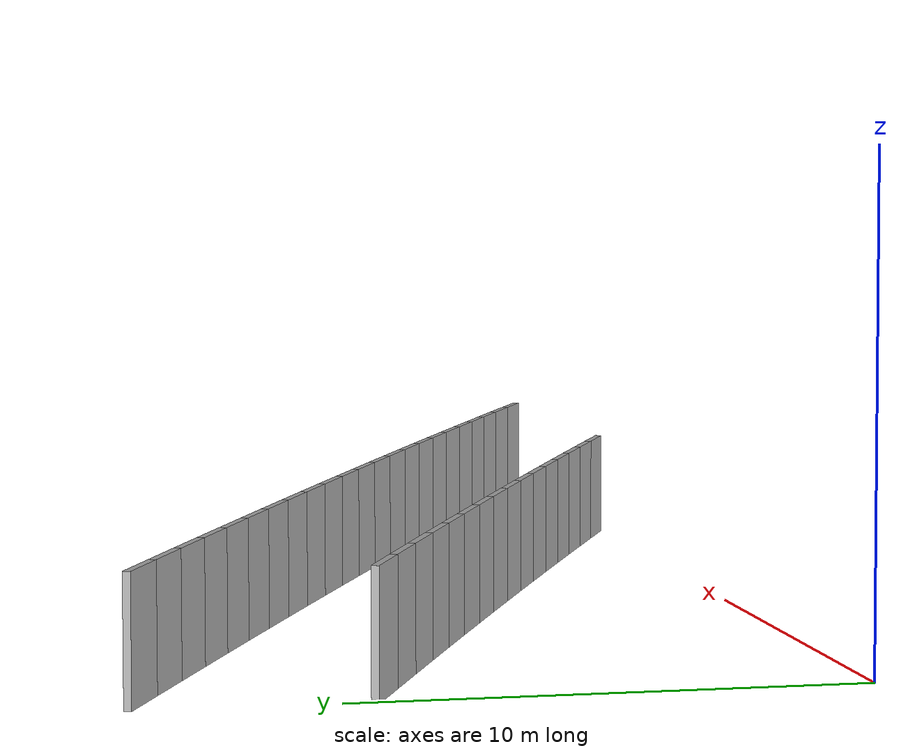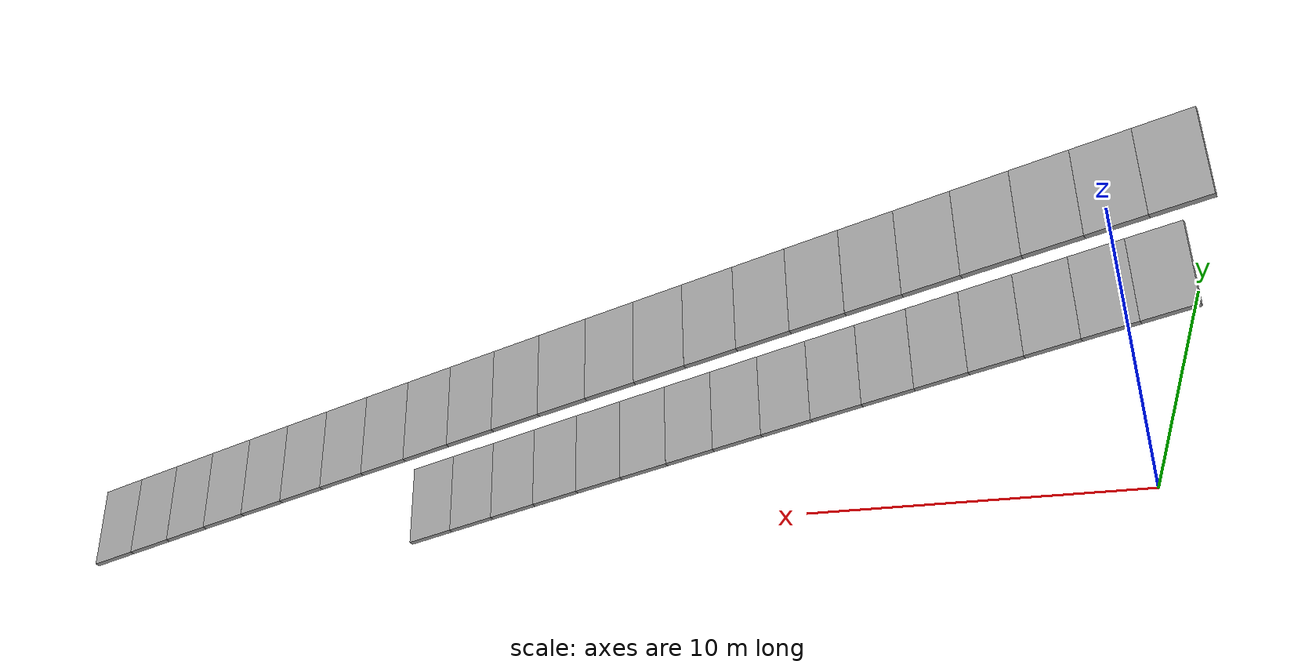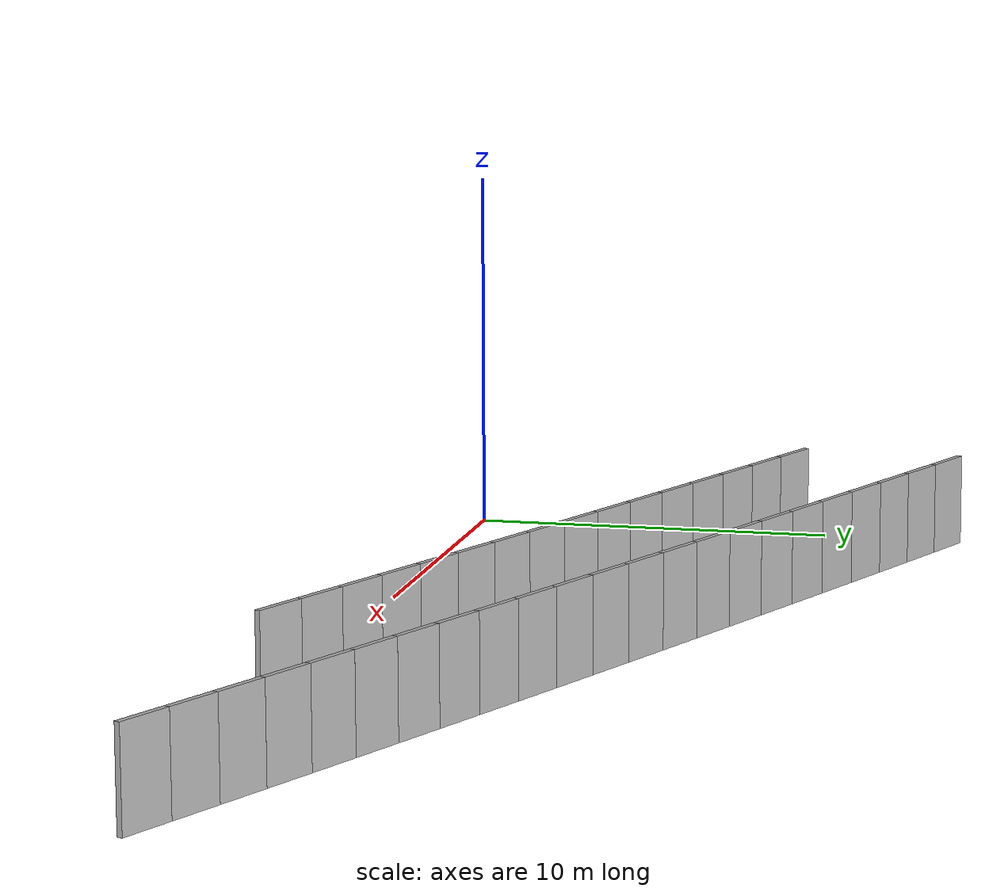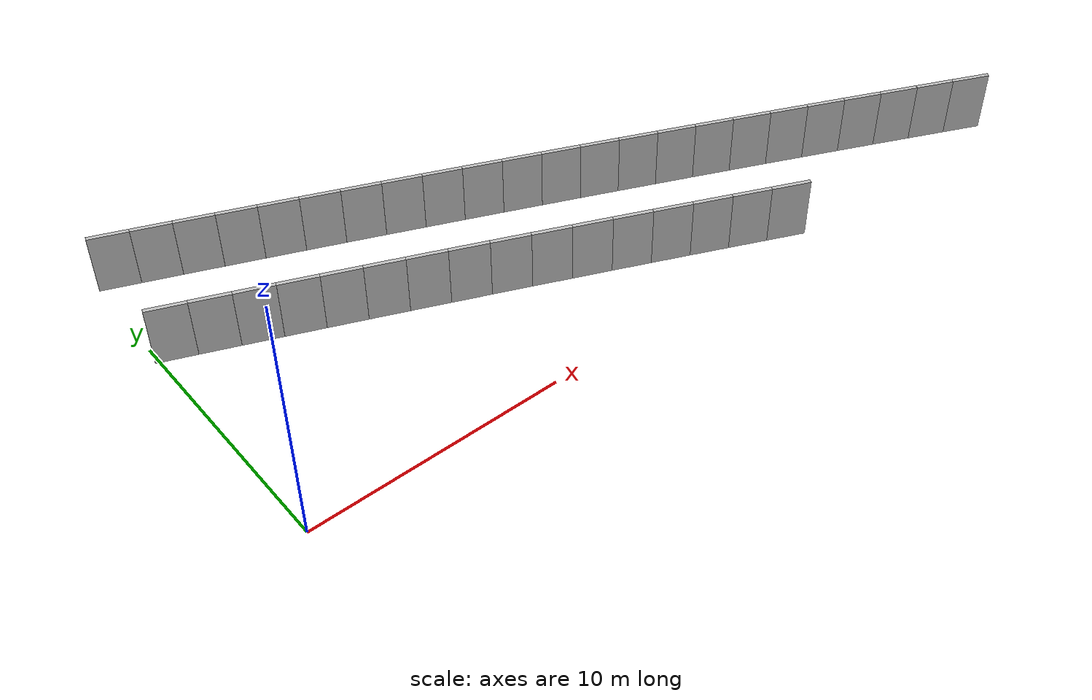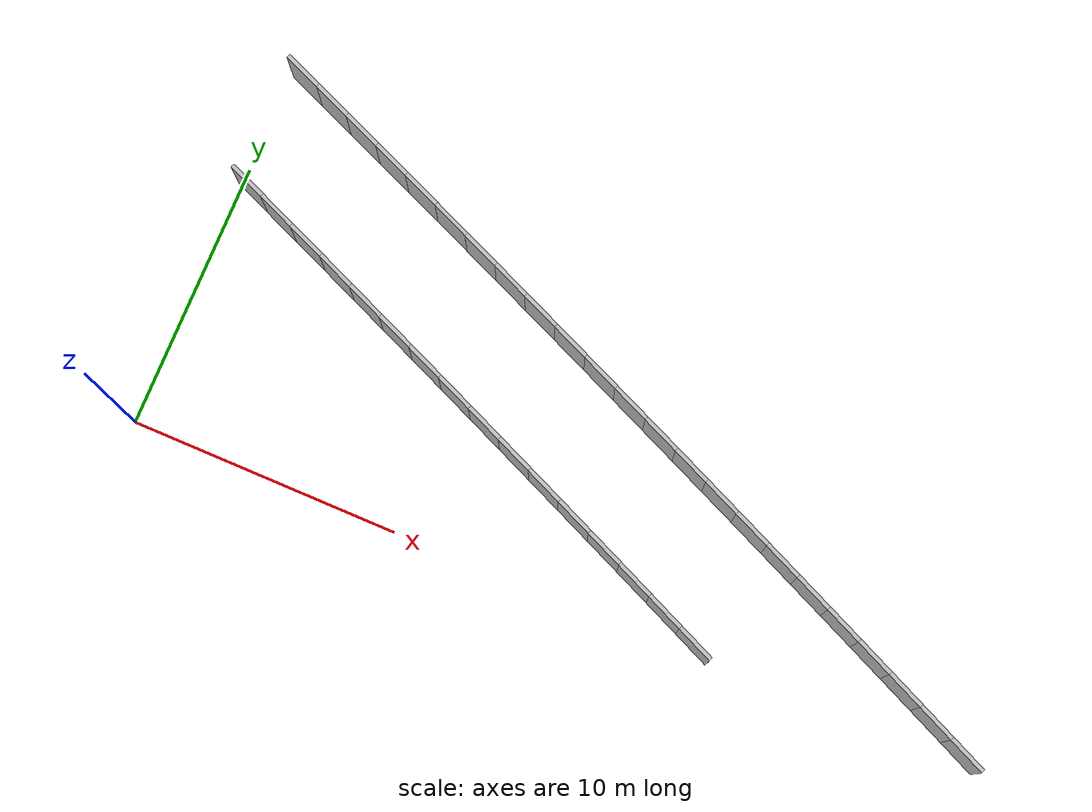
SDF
<?xml version="1.0" ?>
<sdf version="1.6">
  <model name="sps_3445">
    <pose frame="">0 0 0 0 -0 0</pose>
    <static>1</static>
    <self_collide>0</self_collide>
    <allow_auto_disable>0</allow_auto_disable>
    <link name="Wall10651">
      <kinematic>0</kinematic>
      <gravity>1</gravity>
      <self_collide>0</self_collide>
      <collision name="collision">
        <geometry>
          <box>
            <size>1.49641 0.15 2.5</size>
          </box>
        </geometry>
        <pose frame="">0 0 0 0 -0 0</pose>
      </collision>
      <visual name="visual">
        <geometry>
          <box>
            <size>1.49641 0.15 2.5</size>
          </box>
        </geometry>
        <pose frame="">0 0 0 0 -0 0</pose>
        <cast_shadows>1</cast_shadows>
        <transparency>0.0</transparency>
      </visual>
      <pose frame="">21.2089 0.320174 1.25 0 -0 2.72597</pose>
    </link>
    <link name="Wall10652">
      <kinematic>0</kinematic>
      <gravity>1</gravity>
      <self_collide>0</self_collide>
      <collision name="collision">
        <geometry>
          <box>
            <size>1.49652 0.15 2.5</size>
          </box>
        </geometry>
        <pose frame="">0 0 0 0 -0 0</pose>
      </collision>
      <visual name="visual">
        <geometry>
          <box>
            <size>1.49652 0.15 2.5</size>
          </box>
        </geometry>
        <pose frame="">0 0 0 0 -0 0</pose>
        <cast_shadows>1</cast_shadows>
        <transparency>0.0</transparency>
      </visual>
      <pose frame="">19.8394 0.923385 1.25 0 -0 2.72743</pose>
    </link>
    <link name="Wall10653">
      <kinematic>0</kinematic>
      <gravity>1</gravity>
      <self_collide>0</self_collide>
      <collision name="collision">
        <geometry>
          <box>
            <size>1.49673 0.15 2.5</size>
          </box>
        </geometry>
        <pose frame="">0 0 0 0 -0 0</pose>
      </collision>
      <visual name="visual">
        <geometry>
          <box>
            <size>1.49673 0.15 2.5</size>
          </box>
        </geometry>
        <pose frame="">0 0 0 0 -0 0</pose>
        <cast_shadows>1</cast_shadows>
        <transparency>0.0</transparency>
      </visual>
      <pose frame="">18.4688 1.52449 1.25 0 -0 2.72914</pose>
    </link>
    <link name="Wall10654">
      <kinematic>0</kinematic>
      <gravity>1</gravity>
      <self_collide>0</self_collide>
      <collision name="collision">
        <geometry>
          <box>
            <size>1.49645 0.15 2.5</size>
          </box>
        </geometry>
        <pose frame="">0 0 0 0 -0 0</pose>
      </collision>
      <visual name="visual">
        <geometry>
          <box>
            <size>1.49645 0.15 2.5</size>
          </box>
        </geometry>
        <pose frame="">0 0 0 0 -0 0</pose>
        <cast_shadows>1</cast_shadows>
        <transparency>0.0</transparency>
      </visual>
      <pose frame="">17.0973 2.12349 1.25 0 -0 2.73048</pose>
    </link>
    <link name="Wall10655">
      <kinematic>0</kinematic>
      <gravity>1</gravity>
      <self_collide>0</self_collide>
      <collision name="collision">
        <geometry>
          <box>
            <size>1.4966 0.15 2.5</size>
          </box>
        </geometry>
        <pose frame="">0 0 0 0 -0 0</pose>
      </collision>
      <visual name="visual">
        <geometry>
          <box>
            <size>1.4966 0.15 2.5</size>
          </box>
        </geometry>
        <pose frame="">0 0 0 0 -0 0</pose>
        <cast_shadows>1</cast_shadows>
        <transparency>0.0</transparency>
      </visual>
      <pose frame="">15.725 2.72029 1.25 0 -0 2.7323</pose>
    </link>
    <link name="Wall10656">
      <kinematic>0</kinematic>
      <gravity>1</gravity>
      <self_collide>0</self_collide>
      <collision name="collision">
        <geometry>
          <box>
            <size>1.49651 0.15 2.5</size>
          </box>
        </geometry>
        <pose frame="">0 0 0 0 -0 0</pose>
      </collision>
      <visual name="visual">
        <geometry>
          <box>
            <size>1.49651 0.15 2.5</size>
          </box>
        </geometry>
        <pose frame="">0 0 0 0 -0 0</pose>
        <cast_shadows>1</cast_shadows>
        <transparency>0.0</transparency>
      </visual>
      <pose frame="">14.3516 3.31477 1.25 0 -0 2.73388</pose>
    </link>
    <link name="Wall10657">
      <kinematic>0</kinematic>
      <gravity>1</gravity>
      <self_collide>0</self_collide>
      <collision name="collision">
        <geometry>
          <box>
            <size>1.49641 0.15 2.5</size>
          </box>
        </geometry>
        <pose frame="">0 0 0 0 -0 0</pose>
      </collision>
      <visual name="visual">
        <geometry>
          <box>
            <size>1.49641 0.15 2.5</size>
          </box>
        </geometry>
        <pose frame="">0 0 0 0 -0 0</pose>
        <cast_shadows>1</cast_shadows>
        <transparency>0.0</transparency>
      </visual>
      <pose frame="">12.9773 3.90718 1.25 0 -0 2.73527</pose>
    </link>
    <link name="Wall10658">
      <kinematic>0</kinematic>
      <gravity>1</gravity>
      <self_collide>0</self_collide>
      <collision name="collision">
        <geometry>
          <box>
            <size>1.4964 0.15 2.5</size>
          </box>
        </geometry>
        <pose frame="">0 0 0 0 -0 0</pose>
      </collision>
      <visual name="visual">
        <geometry>
          <box>
            <size>1.4964 0.15 2.5</size>
          </box>
        </geometry>
        <pose frame="">0 0 0 0 -0 0</pose>
        <cast_shadows>1</cast_shadows>
        <transparency>0.0</transparency>
      </visual>
      <pose frame="">11.6023 4.49739 1.25 0 -0 2.73704</pose>
    </link>
    <link name="Wall10659">
      <kinematic>0</kinematic>
      <gravity>1</gravity>
      <self_collide>0</self_collide>
      <collision name="collision">
        <geometry>
          <box>
            <size>1.49653 0.15 2.5</size>
          </box>
        </geometry>
        <pose frame="">0 0 0 0 -0 0</pose>
      </collision>
      <visual name="visual">
        <geometry>
          <box>
            <size>1.49653 0.15 2.5</size>
          </box>
        </geometry>
        <pose frame="">0 0 0 0 -0 0</pose>
        <cast_shadows>1</cast_shadows>
        <transparency>0.0</transparency>
      </visual>
      <pose frame="">10.2262 5.0854 1.25 0 -0 2.7385</pose>
    </link>
    <link name="Wall10660">
      <kinematic>0</kinematic>
      <gravity>1</gravity>
      <self_collide>0</self_collide>
      <collision name="collision">
        <geometry>
          <box>
            <size>1.49653 0.15 2.5</size>
          </box>
        </geometry>
        <pose frame="">0 0 0 0 -0 0</pose>
      </collision>
      <visual name="visual">
        <geometry>
          <box>
            <size>1.49653 0.15 2.5</size>
          </box>
        </geometry>
        <pose frame="">0 0 0 0 -0 0</pose>
        <cast_shadows>1</cast_shadows>
        <transparency>0.0</transparency>
      </visual>
      <pose frame="">8.84905 5.67122 1.25 0 -0 2.74027</pose>
    </link>
    <link name="Wall10661">
      <kinematic>0</kinematic>
      <gravity>1</gravity>
      <self_collide>0</self_collide>
      <collision name="collision">
        <geometry>
          <box>
            <size>1.49642 0.15 2.5</size>
          </box>
        </geometry>
        <pose frame="">0 0 0 0 -0 0</pose>
      </collision>
      <visual name="visual">
        <geometry>
          <box>
            <size>1.49642 0.15 2.5</size>
          </box>
        </geometry>
        <pose frame="">0 0 0 0 -0 0</pose>
        <cast_shadows>1</cast_shadows>
        <transparency>0.0</transparency>
      </visual>
      <pose frame="">7.47106 6.25481 1.25 0 -0 2.7417</pose>
    </link>
    <link name="Wall10662">
      <kinematic>0</kinematic>
      <gravity>1</gravity>
      <self_collide>0</self_collide>
      <collision name="collision">
        <geometry>
          <box>
            <size>1.49658 0.15 2.5</size>
          </box>
        </geometry>
        <pose frame="">0 0 0 0 -0 0</pose>
      </collision>
      <visual name="visual">
        <geometry>
          <box>
            <size>1.49658 0.15 2.5</size>
          </box>
        </geometry>
        <pose frame="">0 0 0 0 -0 0</pose>
        <cast_shadows>1</cast_shadows>
        <transparency>0.0</transparency>
      </visual>
      <pose frame="">6.09215 6.83629 1.25 0 -0 2.74334</pose>
    </link>
    <link name="Wall10663">
      <kinematic>0</kinematic>
      <gravity>1</gravity>
      <self_collide>0</self_collide>
      <collision name="collision">
        <geometry>
          <box>
            <size>1.49666 0.15 2.5</size>
          </box>
        </geometry>
        <pose frame="">0 0 0 0 -0 0</pose>
      </collision>
      <visual name="visual">
        <geometry>
          <box>
            <size>1.49666 0.15 2.5</size>
          </box>
        </geometry>
        <pose frame="">0 0 0 0 -0 0</pose>
        <cast_shadows>1</cast_shadows>
        <transparency>0.0</transparency>
      </visual>
      <pose frame="">4.71224 7.41569 1.25 0 -0 2.74478</pose>
    </link>
    <link name="Wall10664">
      <kinematic>0</kinematic>
      <gravity>1</gravity>
      <self_collide>0</self_collide>
      <collision name="collision">
        <geometry>
          <box>
            <size>1.49651 0.15 2.5</size>
          </box>
        </geometry>
        <pose frame="">0 0 0 0 -0 0</pose>
      </collision>
      <visual name="visual">
        <geometry>
          <box>
            <size>1.49651 0.15 2.5</size>
          </box>
        </geometry>
        <pose frame="">0 0 0 0 -0 0</pose>
        <cast_shadows>1</cast_shadows>
        <transparency>0.0</transparency>
      </visual>
      <pose frame="">3.33144 7.9929 1.25 0 -0 2.74651</pose>
    </link>
    <link name="Wall10665">
      <kinematic>0</kinematic>
      <gravity>1</gravity>
      <self_collide>0</self_collide>
      <collision name="collision">
        <geometry>
          <box>
            <size>1.49657 0.15 2.5</size>
          </box>
        </geometry>
        <pose frame="">0 0 0 0 -0 0</pose>
      </collision>
      <visual name="visual">
        <geometry>
          <box>
            <size>1.49657 0.15 2.5</size>
          </box>
        </geometry>
        <pose frame="">0 0 0 0 -0 0</pose>
        <cast_shadows>1</cast_shadows>
        <transparency>0.0</transparency>
      </visual>
      <pose frame="">1.94973 8.56779 1.25 0 -0 2.74811</pose>
    </link>
    <link name="Wall10666">
      <kinematic>0</kinematic>
      <gravity>1</gravity>
      <self_collide>0</self_collide>
      <collision name="collision">
        <geometry>
          <box>
            <size>1.49646 0.15 2.5</size>
          </box>
        </geometry>
        <pose frame="">0 0 0 0 -0 0</pose>
      </collision>
      <visual name="visual">
        <geometry>
          <box>
            <size>1.49646 0.15 2.5</size>
          </box>
        </geometry>
        <pose frame="">0 0 0 0 -0 0</pose>
        <cast_shadows>1</cast_shadows>
        <transparency>0.0</transparency>
      </visual>
      <pose frame="">0.56713 9.14049 1.25 0 -0 2.74967</pose>
    </link>
    <link name="Wall11242">
      <kinematic>0</kinematic>
      <gravity>1</gravity>
      <self_collide>0</self_collide>
      <collision name="collision">
        <geometry>
          <box>
            <size>1.50303 0.15 2.5</size>
          </box>
        </geometry>
        <pose frame="">0 0 0 0 -0 0</pose>
      </collision>
      <visual name="visual">
        <geometry>
          <box>
            <size>1.50303 0.15 2.5</size>
          </box>
        </geometry>
        <pose frame="">0 0 0 0 -0 0</pose>
        <cast_shadows>1</cast_shadows>
        <transparency>0.0</transparency>
      </visual>
      <pose frame="">31.1133 0.426894 1.25 0 -0 2.7164</pose>
    </link>
    <link name="Wall11243">
      <kinematic>0</kinematic>
      <gravity>1</gravity>
      <self_collide>0</self_collide>
      <collision name="collision">
        <geometry>
          <box>
            <size>1.50315 0.15 2.5</size>
          </box>
        </geometry>
        <pose frame="">0 0 0 0 -0 0</pose>
      </collision>
      <visual name="visual">
        <geometry>
          <box>
            <size>1.50315 0.15 2.5</size>
          </box>
        </geometry>
        <pose frame="">0 0 0 0 -0 0</pose>
        <cast_shadows>1</cast_shadows>
        <transparency>0.0</transparency>
      </visual>
      <pose frame="">29.7436 1.04588 1.25 0 -0 2.71791</pose>
    </link>
    <link name="Wall11244">
      <kinematic>0</kinematic>
      <gravity>1</gravity>
      <self_collide>0</self_collide>
      <collision name="collision">
        <geometry>
          <box>
            <size>1.50301 0.15 2.5</size>
          </box>
        </geometry>
        <pose frame="">0 0 0 0 -0 0</pose>
      </collision>
      <visual name="visual">
        <geometry>
          <box>
            <size>1.50301 0.15 2.5</size>
          </box>
        </geometry>
        <pose frame="">0 0 0 0 -0 0</pose>
        <cast_shadows>1</cast_shadows>
        <transparency>0.0</transparency>
      </visual>
      <pose frame="">28.3729 1.66267 1.25 0 -0 2.7196</pose>
    </link>
    <link name="Wall11245">
      <kinematic>0</kinematic>
      <gravity>1</gravity>
      <self_collide>0</self_collide>
      <collision name="collision">
        <geometry>
          <box>
            <size>1.50316 0.15 2.5</size>
          </box>
        </geometry>
        <pose frame="">0 0 0 0 -0 0</pose>
      </collision>
      <visual name="visual">
        <geometry>
          <box>
            <size>1.50316 0.15 2.5</size>
          </box>
        </geometry>
        <pose frame="">0 0 0 0 -0 0</pose>
        <cast_shadows>1</cast_shadows>
        <transparency>0.0</transparency>
      </visual>
      <pose frame="">27.0012 2.2773 1.25 0 -0 2.72107</pose>
    </link>
    <link name="Wall11246">
      <kinematic>0</kinematic>
      <gravity>1</gravity>
      <self_collide>0</self_collide>
      <collision name="collision">
        <geometry>
          <box>
            <size>1.50292 0.15 2.5</size>
          </box>
        </geometry>
        <pose frame="">0 0 0 0 -0 0</pose>
      </collision>
      <visual name="visual">
        <geometry>
          <box>
            <size>1.50292 0.15 2.5</size>
          </box>
        </geometry>
        <pose frame="">0 0 0 0 -0 0</pose>
        <cast_shadows>1</cast_shadows>
        <transparency>0.0</transparency>
      </visual>
      <pose frame="">25.6286 2.88969 1.25 0 -0 2.72282</pose>
    </link>
    <link name="Wall11247">
      <kinematic>0</kinematic>
      <gravity>1</gravity>
      <self_collide>0</self_collide>
      <collision name="collision">
        <geometry>
          <box>
            <size>1.50321 0.15 2.5</size>
          </box>
        </geometry>
        <pose frame="">0 0 0 0 -0 0</pose>
      </collision>
      <visual name="visual">
        <geometry>
          <box>
            <size>1.50321 0.15 2.5</size>
          </box>
        </geometry>
        <pose frame="">0 0 0 0 -0 0</pose>
        <cast_shadows>1</cast_shadows>
        <transparency>0.0</transparency>
      </visual>
      <pose frame="">24.2549 3.49989 1.25 0 -0 2.72428</pose>
    </link>
    <link name="Wall11248">
      <kinematic>0</kinematic>
      <gravity>1</gravity>
      <self_collide>0</self_collide>
      <collision name="collision">
        <geometry>
          <box>
            <size>1.50302 0.15 2.5</size>
          </box>
        </geometry>
        <pose frame="">0 0 0 0 -0 0</pose>
      </collision>
      <visual name="visual">
        <geometry>
          <box>
            <size>1.50302 0.15 2.5</size>
          </box>
        </geometry>
        <pose frame="">0 0 0 0 -0 0</pose>
        <cast_shadows>1</cast_shadows>
        <transparency>0.0</transparency>
      </visual>
      <pose frame="">22.8803 4.10802 1.25 0 -0 2.72587</pose>
    </link>
    <link name="Wall11249">
      <kinematic>0</kinematic>
      <gravity>1</gravity>
      <self_collide>0</self_collide>
      <collision name="collision">
        <geometry>
          <box>
            <size>1.50303 0.15 2.5</size>
          </box>
        </geometry>
        <pose frame="">0 0 0 0 -0 0</pose>
      </collision>
      <visual name="visual">
        <geometry>
          <box>
            <size>1.50303 0.15 2.5</size>
          </box>
        </geometry>
        <pose frame="">0 0 0 0 -0 0</pose>
        <cast_shadows>1</cast_shadows>
        <transparency>0.0</transparency>
      </visual>
      <pose frame="">21.5048 4.71391 1.25 0 -0 2.72747</pose>
    </link>
    <link name="Wall11250">
      <kinematic>0</kinematic>
      <gravity>1</gravity>
      <self_collide>0</self_collide>
      <collision name="collision">
        <geometry>
          <box>
            <size>1.5031 0.15 2.5</size>
          </box>
        </geometry>
        <pose frame="">0 0 0 0 -0 0</pose>
      </collision>
      <visual name="visual">
        <geometry>
          <box>
            <size>1.5031 0.15 2.5</size>
          </box>
        </geometry>
        <pose frame="">0 0 0 0 -0 0</pose>
        <cast_shadows>1</cast_shadows>
        <transparency>0.0</transparency>
      </visual>
      <pose frame="">20.1283 5.31761 1.25 0 -0 2.72909</pose>
    </link>
    <link name="Wall11251">
      <kinematic>0</kinematic>
      <gravity>1</gravity>
      <self_collide>0</self_collide>
      <collision name="collision">
        <geometry>
          <box>
            <size>1.50294 0.15 2.5</size>
          </box>
        </geometry>
        <pose frame="">0 0 0 0 -0 0</pose>
      </collision>
      <visual name="visual">
        <geometry>
          <box>
            <size>1.50294 0.15 2.5</size>
          </box>
        </geometry>
        <pose frame="">0 0 0 0 -0 0</pose>
        <cast_shadows>1</cast_shadows>
        <transparency>0.0</transparency>
      </visual>
      <pose frame="">18.7509 5.91911 1.25 0 -0 2.73064</pose>
    </link>
    <link name="Wall11252">
      <kinematic>0</kinematic>
      <gravity>1</gravity>
      <self_collide>0</self_collide>
      <collision name="collision">
        <geometry>
          <box>
            <size>1.50296 0.15 2.5</size>
          </box>
        </geometry>
        <pose frame="">0 0 0 0 -0 0</pose>
      </collision>
      <visual name="visual">
        <geometry>
          <box>
            <size>1.50296 0.15 2.5</size>
          </box>
        </geometry>
        <pose frame="">0 0 0 0 -0 0</pose>
        <cast_shadows>1</cast_shadows>
        <transparency>0.0</transparency>
      </visual>
      <pose frame="">17.3726 6.51842 1.25 0 -0 2.73224</pose>
    </link>
    <link name="Wall11253">
      <kinematic>0</kinematic>
      <gravity>1</gravity>
      <self_collide>0</self_collide>
      <collision name="collision">
        <geometry>
          <box>
            <size>1.50328 0.15 2.5</size>
          </box>
        </geometry>
        <pose frame="">0 0 0 0 -0 0</pose>
      </collision>
      <visual name="visual">
        <geometry>
          <box>
            <size>1.50328 0.15 2.5</size>
          </box>
        </geometry>
        <pose frame="">0 0 0 0 -0 0</pose>
        <cast_shadows>1</cast_shadows>
        <transparency>0.0</transparency>
      </visual>
      <pose frame="">15.9932 7.11561 1.25 0 -0 2.73379</pose>
    </link>
    <link name="Wall11254">
      <kinematic>0</kinematic>
      <gravity>1</gravity>
      <self_collide>0</self_collide>
      <collision name="collision">
        <geometry>
          <box>
            <size>1.50307 0.15 2.5</size>
          </box>
        </geometry>
        <pose frame="">0 0 0 0 -0 0</pose>
      </collision>
      <visual name="visual">
        <geometry>
          <box>
            <size>1.50307 0.15 2.5</size>
          </box>
        </geometry>
        <pose frame="">0 0 0 0 -0 0</pose>
        <cast_shadows>1</cast_shadows>
        <transparency>0.0</transparency>
      </visual>
      <pose frame="">14.6128 7.71062 1.25 0 -0 2.73545</pose>
    </link>
    <link name="Wall11255">
      <kinematic>0</kinematic>
      <gravity>1</gravity>
      <self_collide>0</self_collide>
      <collision name="collision">
        <geometry>
          <box>
            <size>1.50317 0.15 2.5</size>
          </box>
        </geometry>
        <pose frame="">0 0 0 0 -0 0</pose>
      </collision>
      <visual name="visual">
        <geometry>
          <box>
            <size>1.50317 0.15 2.5</size>
          </box>
        </geometry>
        <pose frame="">0 0 0 0 -0 0</pose>
        <cast_shadows>1</cast_shadows>
        <transparency>0.0</transparency>
      </visual>
      <pose frame="">13.2316 8.30342 1.25 0 -0 2.73694</pose>
    </link>
    <link name="Wall11256">
      <kinematic>0</kinematic>
      <gravity>1</gravity>
      <self_collide>0</self_collide>
      <collision name="collision">
        <geometry>
          <box>
            <size>1.503 0.15 2.5</size>
          </box>
        </geometry>
        <pose frame="">0 0 0 0 -0 0</pose>
      </collision>
      <visual name="visual">
        <geometry>
          <box>
            <size>1.503 0.15 2.5</size>
          </box>
        </geometry>
        <pose frame="">0 0 0 0 -0 0</pose>
        <cast_shadows>1</cast_shadows>
        <transparency>0.0</transparency>
      </visual>
      <pose frame="">11.8494 8.894 1.25 0 -0 2.73866</pose>
    </link>
    <link name="Wall11257">
      <kinematic>0</kinematic>
      <gravity>1</gravity>
      <self_collide>0</self_collide>
      <collision name="collision">
        <geometry>
          <box>
            <size>1.50313 0.15 2.5</size>
          </box>
        </geometry>
        <pose frame="">0 0 0 0 -0 0</pose>
      </collision>
      <visual name="visual">
        <geometry>
          <box>
            <size>1.50313 0.15 2.5</size>
          </box>
        </geometry>
        <pose frame="">0 0 0 0 -0 0</pose>
        <cast_shadows>1</cast_shadows>
        <transparency>0.0</transparency>
      </visual>
      <pose frame="">10.4662 9.48238 1.25 0 -0 2.74011</pose>
    </link>
    <link name="Wall11258">
      <kinematic>0</kinematic>
      <gravity>1</gravity>
      <self_collide>0</self_collide>
      <collision name="collision">
        <geometry>
          <box>
            <size>1.50293 0.15 2.5</size>
          </box>
        </geometry>
        <pose frame="">0 0 0 0 -0 0</pose>
      </collision>
      <visual name="visual">
        <geometry>
          <box>
            <size>1.50293 0.15 2.5</size>
          </box>
        </geometry>
        <pose frame="">0 0 0 0 -0 0</pose>
        <cast_shadows>1</cast_shadows>
        <transparency>0.0</transparency>
      </visual>
      <pose frame="">9.08224 10.0686 1.25 0 -0 2.74177</pose>
    </link>
    <link name="Wall11259">
      <kinematic>0</kinematic>
      <gravity>1</gravity>
      <self_collide>0</self_collide>
      <collision name="collision">
        <geometry>
          <box>
            <size>1.50322 0.15 2.5</size>
          </box>
        </geometry>
        <pose frame="">0 0 0 0 -0 0</pose>
      </collision>
      <visual name="visual">
        <geometry>
          <box>
            <size>1.50322 0.15 2.5</size>
          </box>
        </geometry>
        <pose frame="">0 0 0 0 -0 0</pose>
        <cast_shadows>1</cast_shadows>
        <transparency>0.0</transparency>
      </visual>
      <pose frame="">7.69726 10.6526 1.25 0 -0 2.74331</pose>
    </link>
    <link name="Wall11260">
      <kinematic>0</kinematic>
      <gravity>1</gravity>
      <self_collide>0</self_collide>
      <collision name="collision">
        <geometry>
          <box>
            <size>1.50289 0.15 2.5</size>
          </box>
        </geometry>
        <pose frame="">0 0 0 0 -0 0</pose>
      </collision>
      <visual name="visual">
        <geometry>
          <box>
            <size>1.50289 0.15 2.5</size>
          </box>
        </geometry>
        <pose frame="">0 0 0 0 -0 0</pose>
        <cast_shadows>1</cast_shadows>
        <transparency>0.0</transparency>
      </visual>
      <pose frame="">6.31136 11.2344 1.25 0 -0 2.74498</pose>
    </link>
    <link name="Wall11261">
      <kinematic>0</kinematic>
      <gravity>1</gravity>
      <self_collide>0</self_collide>
      <collision name="collision">
        <geometry>
          <box>
            <size>1.50304 0.15 2.5</size>
          </box>
        </geometry>
        <pose frame="">0 0 0 0 -0 0</pose>
      </collision>
      <visual name="visual">
        <geometry>
          <box>
            <size>1.50304 0.15 2.5</size>
          </box>
        </geometry>
        <pose frame="">0 0 0 0 -0 0</pose>
        <cast_shadows>1</cast_shadows>
        <transparency>0.0</transparency>
      </visual>
      <pose frame="">4.92464 11.814 1.25 0 -0 2.74643</pose>
    </link>
    <link name="Wall11262">
      <kinematic>0</kinematic>
      <gravity>1</gravity>
      <self_collide>0</self_collide>
      <collision name="collision">
        <geometry>
          <box>
            <size>1.5031 0.15 2.5</size>
          </box>
        </geometry>
        <pose frame="">0 0 0 0 -0 0</pose>
      </collision>
      <visual name="visual">
        <geometry>
          <box>
            <size>1.5031 0.15 2.5</size>
          </box>
        </geometry>
        <pose frame="">0 0 0 0 -0 0</pose>
        <cast_shadows>1</cast_shadows>
        <transparency>0.0</transparency>
      </visual>
      <pose frame="">3.53695 12.3915 1.25 0 -0 2.74803</pose>
    </link>
    <link name="Wall11263">
      <kinematic>0</kinematic>
      <gravity>1</gravity>
      <self_collide>0</self_collide>
      <collision name="collision">
        <geometry>
          <box>
            <size>1.50322 0.15 2.5</size>
          </box>
        </geometry>
        <pose frame="">0 0 0 0 -0 0</pose>
      </collision>
      <visual name="visual">
        <geometry>
          <box>
            <size>1.50322 0.15 2.5</size>
          </box>
        </geometry>
        <pose frame="">0 0 0 0 -0 0</pose>
        <cast_shadows>1</cast_shadows>
        <transparency>0.0</transparency>
      </visual>
      <pose frame="">2.14825 12.9668 1.25 0 -0 2.74964</pose>
    </link>
    <link name="Wall11264">
      <kinematic>0</kinematic>
      <gravity>1</gravity>
      <self_collide>0</self_collide>
      <collision name="collision">
        <geometry>
          <box>
            <size>1.50303 0.15 2.5</size>
          </box>
        </geometry>
        <pose frame="">0 0 0 0 -0 0</pose>
      </collision>
      <visual name="visual">
        <geometry>
          <box>
            <size>1.50303 0.15 2.5</size>
          </box>
        </geometry>
        <pose frame="">0 0 0 0 -0 0</pose>
        <cast_shadows>1</cast_shadows>
        <transparency>0.0</transparency>
      </visual>
      <pose frame="">0.758659 13.5399 1.25 0 -0 2.75122</pose>
    </link>
  </model>
</sdf>
